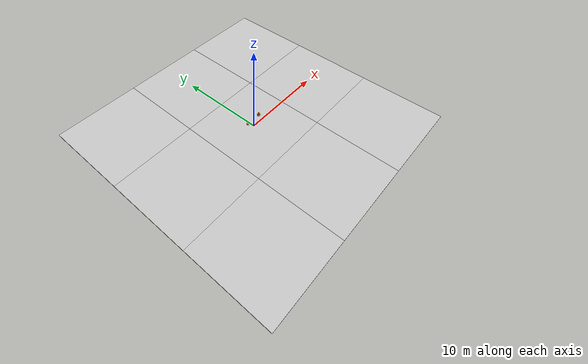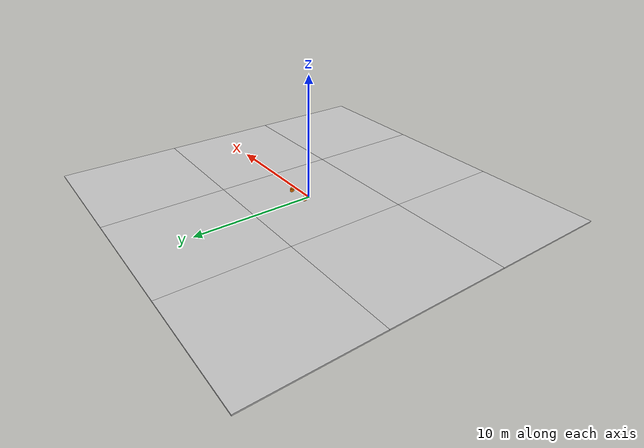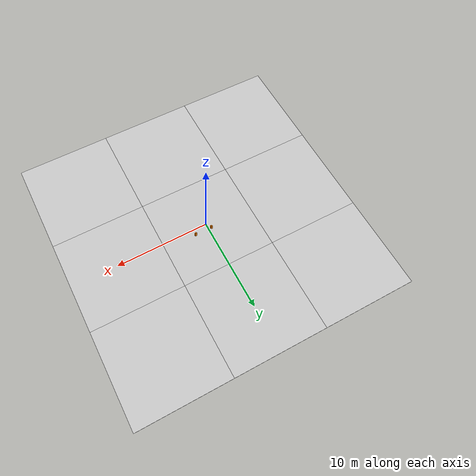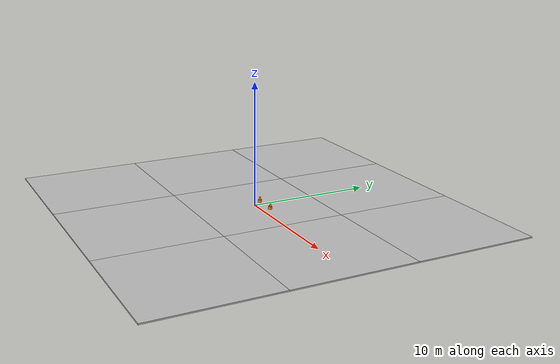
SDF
<?xml version="1.0" ?>
<sdf version="1.9">
  <world name="straight_lane_obstacles4">

    <!-- System plugins -->
    <plugin name='ignition::gazebo::systems::Physics'           filename='ignition-gazebo-physics-system'/>
    <plugin name='ignition::gazebo::systems::UserCommands'      filename='ignition-gazebo-user-commands-system'/>
    <plugin name='ignition::gazebo::systems::SceneBroadcaster'  filename='ignition-gazebo-scene-broadcaster-system'/>
    <plugin name="ignition::gazebo::systems::Contact"           filename="libignition-gazebo-contact-system.so"/>
    <plugin name="ignition::gazebo::systems::Sensors"           filename="ignition-gazebo-sensors-system"/>
    <plugin name="ignition::gazebo::systems::Imu"               filename="ignition-gazebo-imu-system"/>
    <plugin name="ignition::gazebo::systems::NavSat"            filename="ignition-gazebo-navsat-system" />

    <physics type="ode">
      <max_step_size>0.001</max_step_size>
      <real_time_update_rate>1000</real_time_update_rate>
    </physics>

    <scene>
      <ambient>0.1 0.1 0.1 0.1</ambient>
      <background>0.8 0.8 0.8 1.0</background>
      <grid>true</grid>
    </scene>

    <light type="directional" name="sun">
      <cast_shadows>true</cast_shadows>
      <pose>0 0 10 0 0 0</pose>
      <diffuse>1 1 1 1</diffuse>
      <specular>0.2 0.2 0.2 1</specular>
      <direction>-0.5 0.1 -0.9</direction>
    </light>

    <!-- Course (centered) and bounding tiles so no cliffs-->
    <include> <uri>model://floor</uri> <pose>0 0 0 0 0 0</pose> </include>
    <include> <uri>model://floor_boundary</uri> <name>n</name> <pose>10 0 0 0 0 0</pose>  </include>
    <include> <uri>model://floor_boundary</uri> <name>s</name> <pose>-10 0 0 0 0 0</pose>  </include>
    <include> <uri>model://floor_boundary</uri> <name>e</name> <pose>0 10 0 0 0 0</pose> </include>
    <include> <uri>model://floor_boundary</uri> <name>w</name> <pose>0 -10 0 0 0 0</pose> </include>
    <include> <uri>model://floor_boundary</uri> <name>ne</name> <pose>10 10 0 0 0 0</pose> </include>
    <include> <uri>model://floor_boundary</uri> <name>nw</name> <pose>10 -10 0 0 0 0</pose> </include>
    <include> <uri>model://floor_boundary</uri> <name>se</name> <pose>-10 10 0 0 0 0</pose> </include>
    <include> <uri>model://floor_boundary</uri> <name>sw</name> <pose>-10 -10 0 0 0 0</pose> </include>

    <gui fullscreen='0'>
      <camera name='user_camera'>
        <pose>-1.8 14.4 8.6 0.0 0.545 -1.65</pose>
        <view_controller>orbit</view_controller>
      </camera>
    </gui>

    <!-- Obstacles -->
    <include>
      <uri>model://cone</uri>
      <name>cone_1</name>
      <pose>1.5 0.6 0.1 0 0 0</pose>
    </include>

    <include>
      <uri>model://cone</uri>
      <name>cone_2</name>
      <pose>-0.3 0.6 0.1 0 0 0</pose>
    </include>

    <!-- White lane boundaries-->
    <include>
      <uri>model://line_boundary</uri>
      <name>line_boundary</name>
      <pose>-0.612888 4.40625 0 0 0 -1.58307</pose>
    </include>
    <include>
      <uri>model://line_boundary</uri>
      <name>line_boundary_0</name>
      <pose>-0.661753 2.32727 0 0 0 -1.58307</pose>
    </include>
    <include>
      <uri>model://line_boundary</uri>
      <name>line_boundary_1</name>
      <pose>-0.607988 3.35873 0 0 0 -1.58307</pose>
    </include>
    <include>
      <uri>model://line_boundary</uri>
      <name>line_boundary_2</name>
      <pose>-0.643307 1.24872 0 0 0 -1.58307</pose>
    </include>
    <include>
      <uri>model://line_boundary</uri>
      <name>line_boundary_3</name>
      <pose>-0.625472 0.182335 0 0 0 -1.58307</pose>
    </include>
    <include>
      <uri>model://line_boundary</uri>
      <name>line_boundary_4</name>
      <pose>-0.672691 -0.838452 0 0 0 -1.58307</pose>
    </include>
    <include>
      <uri>model://line_boundary</uri>
      <name>line_boundary_5</name>
      <pose>-0.662934 -1.93739 0 0 0 -1.58307</pose>
    </include>
    <include>
      <uri>model://line_boundary</uri>
      <name>line_boundary_6</name>
      <pose>-0.657208 -2.98611 0 0 0 -1.58307</pose>
    </include>
    <include>
      <uri>model://line_boundary</uri>
      <name>line_boundary_7</name>
      <pose>-0.653258 -4.06003 0 0 0 -1.58307</pose>
    </include>
    <include>
      <uri>model://line_boundary</uri>
      <name>line_boundary_8</name>
      <pose>1.9704 -4.19173 0 0 0 -1.58307</pose>
    </include>
    <include>
      <uri>model://line_boundary</uri>
      <name>line_boundary_9</name>
      <pose>1.9552 -3.0839 0 0 0 -1.58307</pose>
    </include>
    <include>
      <uri>model://line_boundary</uri>
      <name>line_boundary_10</name>
      <pose>1.97717 -1.95011 0 0 0 -1.58307</pose>
    </include>
    <include>
      <uri>model://line_boundary</uri>
      <name>line_boundary_11</name>
      <pose>1.9512 -0.880665 0 0 0 -1.58307</pose>
    </include>
    <include>
      <uri>model://line_boundary</uri>
      <name>line_boundary_12</name>
      <pose>1.95933 0.174807 0 0 0 -1.58307</pose>
    </include>
    <include>
      <uri>model://line_boundary</uri>
      <name>line_boundary_13</name>
      <pose>1.96045 1.26046 0 0 0 -1.58307</pose>
    </include>
    <include>
      <uri>model://line_boundary</uri>
      <name>line_boundary_14</name>
      <pose>1.95145 2.35338 0 0 0 -1.58307</pose>
    </include>
    <include>
      <uri>model://line_boundary</uri>
      <name>line_boundary_15</name>
      <pose>1.96928 3.50928 0 0 0 -1.58307</pose>
    </include>
    <include>
      <uri>model://line_boundary</uri>
      <name>line_boundary_16</name>
      <pose>1.97035 4.5703 0 0 0 -1.58307</pose>
    </include>

  </world>
</sdf>

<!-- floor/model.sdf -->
<sdf version="1.9">
  <model name="floor">
    <static>true</static>
    <link name="course_floor">
      <collision name="floor_collision">
        <geometry>
          <box>
            <size>10 10 0.1</size>
          </box>
        </geometry>
      </collision>

      <visual name="visual">
        <geometry>
          <box>
            <size>10 10 0.1</size>
          </box>
        </geometry>

        <material>
          <ambient>0.1 0.1 0.1 1</ambient>
          <diffuse>0.8 0.8 0.8 1</diffuse>
          <specular>0.1 0.1 0.1 1</specular>

          <pbr>
            <metal>
              <albedo_map>materials/textures/floor_picture.png</albedo_map>
              <roughness>0.9</roughness>
              <metalness>0.0</metalness>
            </metal>
          </pbr>
        </material>

      </visual>
    </link>
  </model>
</sdf>

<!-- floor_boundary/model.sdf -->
<sdf version="1.9">
  <model name="floor_boundary">
    <static>true</static>
    <link name="course_floor">
      <collision name="floor_collision">
        <geometry>
          <box>
            <size>10 10 0.095</size>
          </box>
        </geometry>
      </collision>

      <visual name="visual">
        <geometry>
          <box>
            <size>10 10 0.1</size>
          </box>
        </geometry>

        <material>
          <ambient>0.1 0.1 0.1 1</ambient>
          <diffuse>0.8 0.8 0.8 1</diffuse>
          <specular>0.1 0.1 0.1 1</specular>

          <pbr>
            <metal>
              <albedo_map>materials/textures/blank_floor.png</albedo_map>
              <roughness>0.9</roughness>
              <metalness>0.0</metalness>
            </metal>
          </pbr>
        </material>

      </visual>
    </link>
  </model>
</sdf>

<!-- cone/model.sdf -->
<sdf version="1.8">
  <model name="cone">
    <static>true</static>
    <link name="link">
      <!-- Base cylinder (wider bottom) -->
      <collision name="collision_base">
        <geometry>
          <cylinder>
            <radius>0.15</radius>
            <length>0.22</length>
          </cylinder>
        </geometry>
        <pose>0 0 0.11 0 0 0</pose>
      </collision>
      <visual name="visual_base">
        <geometry>
          <cylinder>
            <radius>0.15</radius>
            <length>0.22</length>
          </cylinder>
        </geometry>
        <pose>0 0 0.11 0 0 0</pose>
        <material>
          <ambient>1.0 0.5 0.0 1</ambient>
          <diffuse>1.0 0.5 0.0 1</diffuse>
          <specular>0.3 0.3 0.3 1</specular>
        </material>
      </visual>
      <!-- Top cylinder (narrower top) -->
      <collision name="collision_top">
        <geometry>
          <cylinder>
            <radius>0.07</radius>
            <length>0.23</length>
          </cylinder>
        </geometry>
        <pose>0 0 0.335 0 0 0</pose>
      </collision>
      <visual name="visual_top">
        <geometry>
          <cylinder>
            <radius>0.07</radius>
            <length>0.23</length>
          </cylinder>
        </geometry>
        <pose>0 0 0.335 0 0 0</pose>
        <material>
          <ambient>1.0 0.5 0.0 1</ambient>
          <diffuse>1.0 0.5 0.0 1</diffuse>
          <specular>0.3 0.3 0.3 1</specular>
        </material>
      </visual>
    </link>
  </model>
</sdf>

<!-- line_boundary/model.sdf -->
<sdf version="1.8">
  <model name="line_boundary">

    <static>true</static>

    <link name="white_line_boundary">
      <collision name="line_collision">
        <pose>0 0 0.05 0 0 0</pose>
        <geometry>
          <box><size>1 0.1 0.1</size></box>
        </geometry>
      </collision>
    </link>

  </model>
</sdf>
